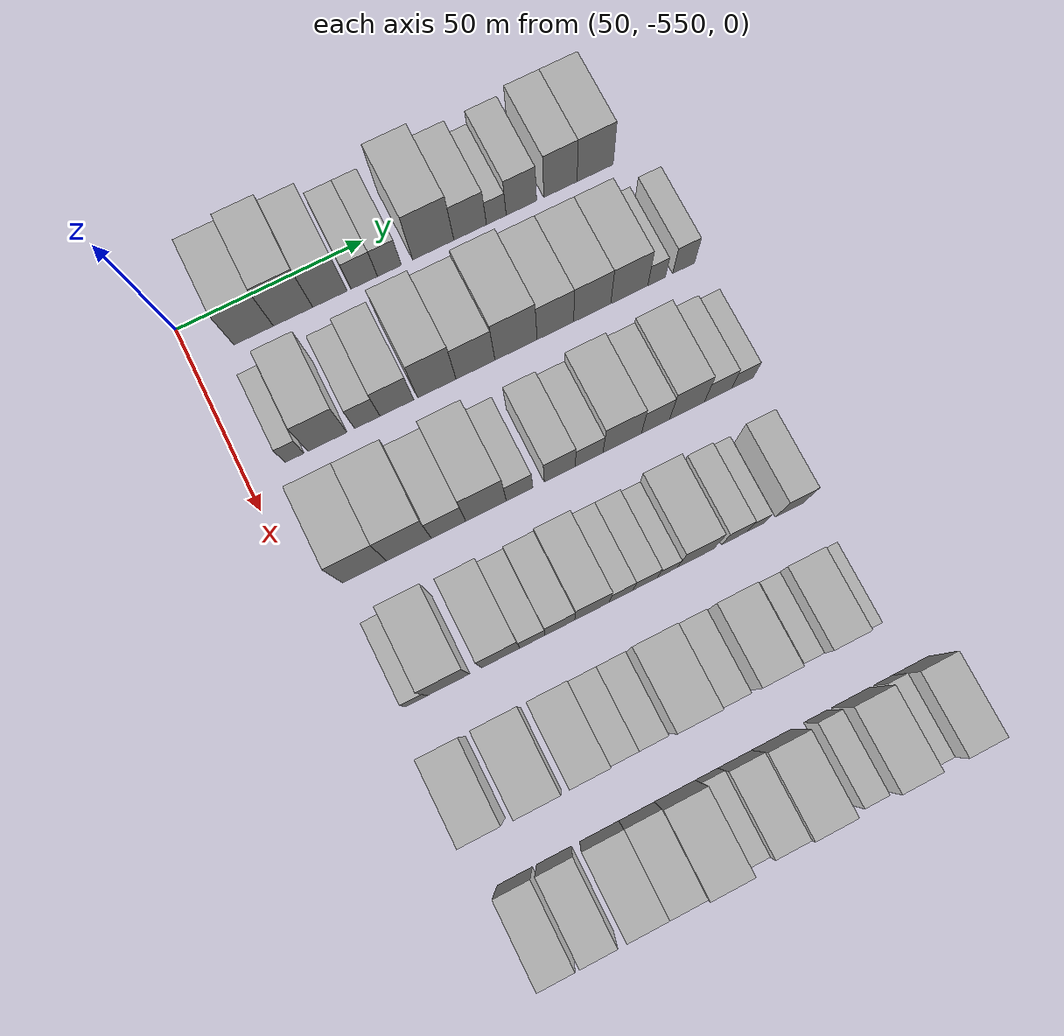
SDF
<sdf version="1.6">
 <world name="default">
  <model name="building_1">
   <static>1</static>
   <pose>50.0000 -533.7909 0 0.000000 0.000000 0.000000</pose>
   <link name="link">
    <pose>0 0 10.50 0 0 0</pose>
    <collision name="collision"><geometry><box><size>20.0000 10.4181 21.0000</size></box></geometry></collision>
    <visual name="visual">
     <cast_shadows>0</cast_shadows>
     <geometry><box><size>20.0000 10.4181 21.0000</size></box></geometry>
     <material>
      <script>
       <uri>model://HANNAS_wall/materials/scripts</uri>
       <uri>model://HANNAS_wall/materials/textures</uri>
       <name>vrc/HANNAS_wall</name>
      </script>
     </material>
    </visual>
   </link>
  </model>
  <model name="building_2">
   <static>1</static>
   <pose>50.0000 -523.3498 0 0.000000 0.000000 0.000000</pose>
   <link name="link">
    <pose>0 0 12.00 0 0 0</pose>
    <collision name="collision"><geometry><box><size>20.0000 10.4640 24.0000</size></box></geometry></collision>
    <visual name="visual">
     <cast_shadows>0</cast_shadows>
     <geometry><box><size>20.0000 10.4640 24.0000</size></box></geometry>
     <material>
      <script>
       <uri>model://HANNAS_wall/materials/scripts</uri>
       <uri>model://HANNAS_wall/materials/textures</uri>
       <name>vrc/HANNAS_wall</name>
      </script>
     </material>
    </visual>
   </link>
  </model>
  <model name="building_3">
   <static>1</static>
   <pose>50.0000 -513.5348 0 0.000000 0.000000 0.000000</pose>
   <link name="link">
    <pose>0 0 10.50 0 0 0</pose>
    <collision name="collision"><geometry><box><size>20.0000 9.1661 21.0000</size></box></geometry></collision>
    <visual name="visual">
     <cast_shadows>0</cast_shadows>
     <geometry><box><size>20.0000 9.1661 21.0000</size></box></geometry>
     <material>
      <script>
       <uri>model://HANNAS_wall/materials/scripts</uri>
       <uri>model://HANNAS_wall/materials/textures</uri>
       <name>vrc/HANNAS_wall</name>
      </script>
     </material>
    </visual>
   </link>
  </model>
  <model name="building_4">
   <static>1</static>
   <pose>50.0000 -504.3818 0 0.000000 0.000000 0.000000</pose>
   <link name="link">
    <pose>0 0 7.50 0 0 0</pose>
    <collision name="collision"><geometry><box><size>20.0000 7.1398 15.0000</size></box></geometry></collision>
    <visual name="visual">
     <cast_shadows>0</cast_shadows>
     <geometry><box><size>20.0000 7.1398 15.0000</size></box></geometry>
     <material>
      <script>
       <uri>model://HANNAS_wall/materials/scripts</uri>
       <uri>model://HANNAS_wall/materials/textures</uri>
       <name>vrc/HANNAS_wall</name>
      </script>
     </material>
    </visual>
   </link>
  </model>
  <model name="building_5">
   <static>1</static>
   <pose>50.0000 -497.5949 0 0.000000 0.000000 0.000000</pose>
   <link name="link">
    <pose>0 0 7.50 0 0 0</pose>
    <collision name="collision"><geometry><box><size>20.0000 6.4341 15.0000</size></box></geometry></collision>
    <visual name="visual">
     <cast_shadows>0</cast_shadows>
     <geometry><box><size>20.0000 6.4341 15.0000</size></box></geometry>
     <material>
      <script>
       <uri>model://HANNAS_wall/materials/scripts</uri>
       <uri>model://HANNAS_wall/materials/textures</uri>
       <name>vrc/HANNAS_wall</name>
      </script>
     </material>
    </visual>
   </link>
  </model>
  <model name="building_6">
   <static>1</static>
   <pose>50.0000 -485.7692 0 0.000000 0.000000 0.000000</pose>
   <link name="link">
    <pose>0 0 12.00 0 0 0</pose>
    <collision name="collision"><geometry><box><size>20.0000 11.2173 24.0000</size></box></geometry></collision>
    <visual name="visual">
     <cast_shadows>0</cast_shadows>
     <geometry><box><size>20.0000 11.2173 24.0000</size></box></geometry>
     <material>
      <script>
       <uri>model://HANNAS_wall/materials/scripts</uri>
       <uri>model://HANNAS_wall/materials/textures</uri>
       <name>vrc/HANNAS_wall</name>
      </script>
     </material>
    </visual>
   </link>
  </model>
  <model name="building_7">
   <static>1</static>
   <pose>50.0000 -475.7095 0 0.000000 0.000000 0.000000</pose>
   <link name="link">
    <pose>0 0 9.00 0 0 0</pose>
    <collision name="collision"><geometry><box><size>20.0000 8.9020 18.0000</size></box></geometry></collision>
    <visual name="visual">
     <cast_shadows>0</cast_shadows>
     <geometry><box><size>20.0000 8.9020 18.0000</size></box></geometry>
     <material>
      <script>
       <uri>model://HANNAS_wall/materials/scripts</uri>
       <uri>model://HANNAS_wall/materials/textures</uri>
       <name>vrc/HANNAS_wall</name>
      </script>
     </material>
    </visual>
   </link>
  </model>
  <model name="building_8">
   <static>1</static>
   <pose>50.0000 -468.5558 0 0.000000 0.000000 0.000000</pose>
   <link name="link">
    <pose>0 0 6.00 0 0 0</pose>
    <collision name="collision"><geometry><box><size>20.0000 5.4055 12.0000</size></box></geometry></collision>
    <visual name="visual">
     <cast_shadows>0</cast_shadows>
     <geometry><box><size>20.0000 5.4055 12.0000</size></box></geometry>
     <material>
      <script>
       <uri>model://HANNAS_wall/materials/scripts</uri>
       <uri>model://HANNAS_wall/materials/textures</uri>
       <name>vrc/HANNAS_wall</name>
      </script>
     </material>
    </visual>
   </link>
  </model>
  <model name="building_9">
   <static>1</static>
   <pose>50.0000 -461.6737 0 0.000000 0.000000 0.000000</pose>
   <link name="link">
    <pose>0 0 9.00 0 0 0</pose>
    <collision name="collision"><geometry><box><size>20.0000 8.3586 18.0000</size></box></geometry></collision>
    <visual name="visual">
     <cast_shadows>0</cast_shadows>
     <geometry><box><size>20.0000 8.3586 18.0000</size></box></geometry>
     <material>
      <script>
       <uri>model://HANNAS_wall/materials/scripts</uri>
       <uri>model://HANNAS_wall/materials/textures</uri>
       <name>vrc/HANNAS_wall</name>
      </script>
     </material>
    </visual>
   </link>
  </model>
  <model name="building_10">
   <static>1</static>
   <pose>50.0000 -450.8882 0 0.000000 0.000000 0.000000</pose>
   <link name="link">
    <pose>0 0 10.50 0 0 0</pose>
    <collision name="collision"><geometry><box><size>20.0000 9.2124 21.0000</size></box></geometry></collision>
    <visual name="visual">
     <cast_shadows>0</cast_shadows>
     <geometry><box><size>20.0000 9.2124 21.0000</size></box></geometry>
     <material>
      <script>
       <uri>model://HANNAS_wall/materials/scripts</uri>
       <uri>model://HANNAS_wall/materials/textures</uri>
       <name>vrc/HANNAS_wall</name>
      </script>
     </material>
    </visual>
   </link>
  </model>
  <model name="building_11">
   <static>1</static>
   <pose>50.0000 -441.2576 0 0.000000 0.000000 0.000000</pose>
   <link name="link">
    <pose>0 0 10.50 0 0 0</pose>
    <collision name="collision"><geometry><box><size>20.0000 10.0488 21.0000</size></box></geometry></collision>
    <visual name="visual">
     <cast_shadows>0</cast_shadows>
     <geometry><box><size>20.0000 10.0488 21.0000</size></box></geometry>
     <material>
      <script>
       <uri>model://HANNAS_wall/materials/scripts</uri>
       <uri>model://HANNAS_wall/materials/textures</uri>
       <name>vrc/HANNAS_wall</name>
      </script>
     </material>
    </visual>
   </link>
  </model>
  <model name="building_122">
   <static>1</static>
   <pose>82.0000 -537.5497 0 0.000000 0.000000 0.000000</pose>
   <link name="link">
    <pose>0 0 6.00 0 0 0</pose>
    <collision name="collision"><geometry><box><size>20.0000 4.9006 12.0000</size></box></geometry></collision>
    <visual name="visual">
     <cast_shadows>0</cast_shadows>
     <geometry><box><size>20.0000 4.9006 12.0000</size></box></geometry>
     <material>
      <script>
       <uri>model://HANNAS_wall/materials/scripts</uri>
       <uri>model://HANNAS_wall/materials/textures</uri>
       <name>vrc/HANNAS_wall</name>
      </script>
     </material>
    </visual>
   </link>
  </model>
  <model name="building_123">
   <static>1</static>
   <pose>82.0000 -529.0203 0 0.000000 0.000000 0.000000</pose>
   <link name="link">
    <pose>0 0 10.50 0 0 0</pose>
    <collision name="collision"><geometry><box><size>20.0000 10.1583 21.0000</size></box></geometry></collision>
    <visual name="visual">
     <cast_shadows>0</cast_shadows>
     <geometry><box><size>20.0000 10.1583 21.0000</size></box></geometry>
     <material>
      <script>
       <uri>model://HANNAS_wall/materials/scripts</uri>
       <uri>model://HANNAS_wall/materials/textures</uri>
       <name>vrc/HANNAS_wall</name>
      </script>
     </material>
    </visual>
   </link>
  </model>
  <model name="building_124">
   <static>1</static>
   <pose>82.0000 -518.6236 0 0.000000 0.000000 0.000000</pose>
   <link name="link">
    <pose>0 0 7.50 0 0 0</pose>
    <collision name="collision"><geometry><box><size>20.0000 6.6351 15.0000</size></box></geometry></collision>
    <visual name="visual">
     <cast_shadows>0</cast_shadows>
     <geometry><box><size>20.0000 6.6351 15.0000</size></box></geometry>
     <material>
      <script>
       <uri>model://HANNAS_wall/materials/scripts</uri>
       <uri>model://HANNAS_wall/materials/textures</uri>
       <name>vrc/HANNAS_wall</name>
      </script>
     </material>
    </visual>
   </link>
  </model>
  <model name="building_125">
   <static>1</static>
   <pose>82.0000 -510.8559 0 0.000000 0.000000 0.000000</pose>
   <link name="link">
    <pose>0 0 9.00 0 0 0</pose>
    <collision name="collision"><geometry><box><size>20.0000 8.9002 18.0000</size></box></geometry></collision>
    <visual name="visual">
     <cast_shadows>0</cast_shadows>
     <geometry><box><size>20.0000 8.9002 18.0000</size></box></geometry>
     <material>
      <script>
       <uri>model://HANNAS_wall/materials/scripts</uri>
       <uri>model://HANNAS_wall/materials/textures</uri>
       <name>vrc/HANNAS_wall</name>
      </script>
     </material>
    </visual>
   </link>
  </model>
  <model name="building_126">
   <static>1</static>
   <pose>82.0000 -500.3152 0 0.000000 0.000000 0.000000</pose>
   <link name="link">
    <pose>0 0 12.00 0 0 0</pose>
    <collision name="collision"><geometry><box><size>20.0000 10.1811 24.0000</size></box></geometry></collision>
    <visual name="visual">
     <cast_shadows>0</cast_shadows>
     <geometry><box><size>20.0000 10.1811 24.0000</size></box></geometry>
     <material>
      <script>
       <uri>model://HANNAS_wall/materials/scripts</uri>
       <uri>model://HANNAS_wall/materials/textures</uri>
       <name>vrc/HANNAS_wall</name>
      </script>
     </material>
    </visual>
   </link>
  </model>
  <model name="building_127">
   <static>1</static>
   <pose>82.0000 -490.0311 0 0.000000 0.000000 0.000000</pose>
   <link name="link">
    <pose>0 0 10.50 0 0 0</pose>
    <collision name="collision"><geometry><box><size>20.0000 10.3872 21.0000</size></box></geometry></collision>
    <visual name="visual">
     <cast_shadows>0</cast_shadows>
     <geometry><box><size>20.0000 10.3872 21.0000</size></box></geometry>
     <material>
      <script>
       <uri>model://HANNAS_wall/materials/scripts</uri>
       <uri>model://HANNAS_wall/materials/textures</uri>
       <name>vrc/HANNAS_wall</name>
      </script>
     </material>
    </visual>
   </link>
  </model>
  <model name="building_128">
   <static>1</static>
   <pose>82.0000 -479.1838 0 0.000000 0.000000 0.000000</pose>
   <link name="link">
    <pose>0 0 12.00 0 0 0</pose>
    <collision name="collision"><geometry><box><size>20.0000 11.3076 24.0000</size></box></geometry></collision>
    <visual name="visual">
     <cast_shadows>0</cast_shadows>
     <geometry><box><size>20.0000 11.3076 24.0000</size></box></geometry>
     <material>
      <script>
       <uri>model://HANNAS_wall/materials/scripts</uri>
       <uri>model://HANNAS_wall/materials/textures</uri>
       <name>vrc/HANNAS_wall</name>
      </script>
     </material>
    </visual>
   </link>
  </model>
  <model name="building_129">
   <static>1</static>
   <pose>82.0000 -468.6011 0 0.000000 0.000000 0.000000</pose>
   <link name="link">
    <pose>0 0 10.50 0 0 0</pose>
    <collision name="collision"><geometry><box><size>20.0000 9.8577 21.0000</size></box></geometry></collision>
    <visual name="visual">
     <cast_shadows>0</cast_shadows>
     <geometry><box><size>20.0000 9.8577 21.0000</size></box></geometry>
     <material>
      <script>
       <uri>model://HANNAS_wall/materials/scripts</uri>
       <uri>model://HANNAS_wall/materials/textures</uri>
       <name>vrc/HANNAS_wall</name>
      </script>
     </material>
    </visual>
   </link>
  </model>
  <model name="building_130">
   <static>1</static>
   <pose>82.0000 -458.6196 0 0.000000 0.000000 0.000000</pose>
   <link name="link">
    <pose>0 0 10.50 0 0 0</pose>
    <collision name="collision"><geometry><box><size>20.0000 10.1055 21.0000</size></box></geometry></collision>
    <visual name="visual">
     <cast_shadows>0</cast_shadows>
     <geometry><box><size>20.0000 10.1055 21.0000</size></box></geometry>
     <material>
      <script>
       <uri>model://HANNAS_wall/materials/scripts</uri>
       <uri>model://HANNAS_wall/materials/textures</uri>
       <name>vrc/HANNAS_wall</name>
      </script>
     </material>
    </visual>
   </link>
  </model>
  <model name="building_131">
   <static>1</static>
   <pose>82.0000 -448.5017 0 0.000000 0.000000 0.000000</pose>
   <link name="link">
    <pose>0 0 10.50 0 0 0</pose>
    <collision name="collision"><geometry><box><size>20.0000 10.1303 21.0000</size></box></geometry></collision>
    <visual name="visual">
     <cast_shadows>0</cast_shadows>
     <geometry><box><size>20.0000 10.1303 21.0000</size></box></geometry>
     <material>
      <script>
       <uri>model://HANNAS_wall/materials/scripts</uri>
       <uri>model://HANNAS_wall/materials/textures</uri>
       <name>vrc/HANNAS_wall</name>
      </script>
     </material>
    </visual>
   </link>
  </model>
  <model name="building_132">
   <static>1</static>
   <pose>82.0000 -441.0138 0 0.000000 0.000000 0.000000</pose>
   <link name="link">
    <pose>0 0 6.00 0 0 0</pose>
    <collision name="collision"><geometry><box><size>20.0000 4.8454 12.0000</size></box></geometry></collision>
    <visual name="visual">
     <cast_shadows>0</cast_shadows>
     <geometry><box><size>20.0000 4.8454 12.0000</size></box></geometry>
     <material>
      <script>
       <uri>model://HANNAS_wall/materials/scripts</uri>
       <uri>model://HANNAS_wall/materials/textures</uri>
       <name>vrc/HANNAS_wall</name>
      </script>
     </material>
    </visual>
   </link>
  </model>
  <model name="building_133">
   <static>1</static>
   <pose>82.0000 -433.5760 0 0.000000 0.000000 0.000000</pose>
   <link name="link">
    <pose>0 0 7.50 0 0 0</pose>
    <collision name="collision"><geometry><box><size>20.0000 6.0302 15.0000</size></box></geometry></collision>
    <visual name="visual">
     <cast_shadows>0</cast_shadows>
     <geometry><box><size>20.0000 6.0302 15.0000</size></box></geometry>
     <material>
      <script>
       <uri>model://HANNAS_wall/materials/scripts</uri>
       <uri>model://HANNAS_wall/materials/textures</uri>
       <name>vrc/HANNAS_wall</name>
      </script>
     </material>
    </visual>
   </link>
  </model>
  <model name="building_243">
   <static>1</static>
   <pose>114.0000 -534.3735 0 0.000000 0.000000 0.000000</pose>
   <link name="link">
    <pose>0 0 12.00 0 0 0</pose>
    <collision name="collision"><geometry><box><size>20.0000 11.2531 24.0000</size></box></geometry></collision>
    <visual name="visual">
     <cast_shadows>0</cast_shadows>
     <geometry><box><size>20.0000 11.2531 24.0000</size></box></geometry>
     <material>
      <script>
       <uri>model://HANNAS_wall/materials/scripts</uri>
       <uri>model://HANNAS_wall/materials/textures</uri>
       <name>vrc/HANNAS_wall</name>
      </script>
     </material>
    </visual>
   </link>
  </model>
  <model name="building_244">
   <static>1</static>
   <pose>114.0000 -522.9840 0 0.000000 0.000000 0.000000</pose>
   <link name="link">
    <pose>0 0 12.00 0 0 0</pose>
    <collision name="collision"><geometry><box><size>20.0000 11.5258 24.0000</size></box></geometry></collision>
    <visual name="visual">
     <cast_shadows>0</cast_shadows>
     <geometry><box><size>20.0000 11.5258 24.0000</size></box></geometry>
     <material>
      <script>
       <uri>model://HANNAS_wall/materials/scripts</uri>
       <uri>model://HANNAS_wall/materials/textures</uri>
       <name>vrc/HANNAS_wall</name>
      </script>
     </material>
    </visual>
   </link>
  </model>
  <model name="building_245">
   <static>1</static>
   <pose>114.0000 -512.7884 0 0.000000 0.000000 0.000000</pose>
   <link name="link">
    <pose>0 0 9.00 0 0 0</pose>
    <collision name="collision"><geometry><box><size>20.0000 8.8653 18.0000</size></box></geometry></collision>
    <visual name="visual">
     <cast_shadows>0</cast_shadows>
     <geometry><box><size>20.0000 8.8653 18.0000</size></box></geometry>
     <material>
      <script>
       <uri>model://HANNAS_wall/materials/scripts</uri>
       <uri>model://HANNAS_wall/materials/textures</uri>
       <name>vrc/HANNAS_wall</name>
      </script>
     </material>
    </visual>
   </link>
  </model>
  <model name="building_246">
   <static>1</static>
   <pose>114.0000 -503.0552 0 0.000000 0.000000 0.000000</pose>
   <link name="link">
    <pose>0 0 12.00 0 0 0</pose>
    <collision name="collision"><geometry><box><size>20.0000 10.6011 24.0000</size></box></geometry></collision>
    <visual name="visual">
     <cast_shadows>0</cast_shadows>
     <geometry><box><size>20.0000 10.6011 24.0000</size></box></geometry>
     <material>
      <script>
       <uri>model://HANNAS_wall/materials/scripts</uri>
       <uri>model://HANNAS_wall/materials/textures</uri>
       <name>vrc/HANNAS_wall</name>
      </script>
     </material>
    </visual>
   </link>
  </model>
  <model name="building_247">
   <static>1</static>
   <pose>114.0000 -494.2888 0 0.000000 0.000000 0.000000</pose>
   <link name="link">
    <pose>0 0 7.50 0 0 0</pose>
    <collision name="collision"><geometry><box><size>20.0000 6.9318 15.0000</size></box></geometry></collision>
    <visual name="visual">
     <cast_shadows>0</cast_shadows>
     <geometry><box><size>20.0000 6.9318 15.0000</size></box></geometry>
     <material>
      <script>
       <uri>model://HANNAS_wall/materials/scripts</uri>
       <uri>model://HANNAS_wall/materials/textures</uri>
       <name>vrc/HANNAS_wall</name>
      </script>
     </material>
    </visual>
   </link>
  </model>
  <model name="building_248">
   <static>1</static>
   <pose>114.0000 -483.7545 0 0.000000 0.000000 0.000000</pose>
   <link name="link">
    <pose>0 0 9.00 0 0 0</pose>
    <collision name="collision"><geometry><box><size>20.0000 8.1367 18.0000</size></box></geometry></collision>
    <visual name="visual">
     <cast_shadows>0</cast_shadows>
     <geometry><box><size>20.0000 8.1367 18.0000</size></box></geometry>
     <material>
      <script>
       <uri>model://HANNAS_wall/materials/scripts</uri>
       <uri>model://HANNAS_wall/materials/textures</uri>
       <name>vrc/HANNAS_wall</name>
      </script>
     </material>
    </visual>
   </link>
  </model>
  <model name="building_249">
   <static>1</static>
   <pose>114.0000 -476.0114 0 0.000000 0.000000 0.000000</pose>
   <link name="link">
    <pose>0 0 7.50 0 0 0</pose>
    <collision name="collision"><geometry><box><size>20.0000 7.3494 15.0000</size></box></geometry></collision>
    <visual name="visual">
     <cast_shadows>0</cast_shadows>
     <geometry><box><size>20.0000 7.3494 15.0000</size></box></geometry>
     <material>
      <script>
       <uri>model://HANNAS_wall/materials/scripts</uri>
       <uri>model://HANNAS_wall/materials/textures</uri>
       <name>vrc/HANNAS_wall</name>
      </script>
     </material>
    </visual>
   </link>
  </model>
  <model name="building_250">
   <static>1</static>
   <pose>114.0000 -467.2155 0 0.000000 0.000000 0.000000</pose>
   <link name="link">
    <pose>0 0 10.50 0 0 0</pose>
    <collision name="collision"><geometry><box><size>20.0000 10.2425 21.0000</size></box></geometry></collision>
    <visual name="visual">
     <cast_shadows>0</cast_shadows>
     <geometry><box><size>20.0000 10.2425 21.0000</size></box></geometry>
     <material>
      <script>
       <uri>model://HANNAS_wall/materials/scripts</uri>
       <uri>model://HANNAS_wall/materials/textures</uri>
       <name>vrc/HANNAS_wall</name>
      </script>
     </material>
    </visual>
   </link>
  </model>
  <model name="building_251">
   <static>1</static>
   <pose>114.0000 -458.3304 0 0.000000 0.000000 0.000000</pose>
   <link name="link">
    <pose>0 0 9.00 0 0 0</pose>
    <collision name="collision"><geometry><box><size>20.0000 7.5276 18.0000</size></box></geometry></collision>
    <visual name="visual">
     <cast_shadows>0</cast_shadows>
     <geometry><box><size>20.0000 7.5276 18.0000</size></box></geometry>
     <material>
      <script>
       <uri>model://HANNAS_wall/materials/scripts</uri>
       <uri>model://HANNAS_wall/materials/textures</uri>
       <name>vrc/HANNAS_wall</name>
      </script>
     </material>
    </visual>
   </link>
  </model>
  <model name="building_252">
   <static>1</static>
   <pose>114.0000 -449.8734 0 0.000000 0.000000 0.000000</pose>
   <link name="link">
    <pose>0 0 10.50 0 0 0</pose>
    <collision name="collision"><geometry><box><size>20.0000 9.3864 21.0000</size></box></geometry></collision>
    <visual name="visual">
     <cast_shadows>0</cast_shadows>
     <geometry><box><size>20.0000 9.3864 21.0000</size></box></geometry>
     <material>
      <script>
       <uri>model://HANNAS_wall/materials/scripts</uri>
       <uri>model://HANNAS_wall/materials/textures</uri>
       <name>vrc/HANNAS_wall</name>
      </script>
     </material>
    </visual>
   </link>
  </model>
  <model name="building_253">
   <static>1</static>
   <pose>114.0000 -441.4984 0 0.000000 0.000000 0.000000</pose>
   <link name="link">
    <pose>0 0 7.50 0 0 0</pose>
    <collision name="collision"><geometry><box><size>20.0000 7.3636 15.0000</size></box></geometry></collision>
    <visual name="visual">
     <cast_shadows>0</cast_shadows>
     <geometry><box><size>20.0000 7.3636 15.0000</size></box></geometry>
     <material>
      <script>
       <uri>model://HANNAS_wall/materials/scripts</uri>
       <uri>model://HANNAS_wall/materials/textures</uri>
       <name>vrc/HANNAS_wall</name>
      </script>
     </material>
    </visual>
   </link>
  </model>
  <model name="building_254">
   <static>1</static>
   <pose>114.0000 -434.8476 0 0.000000 0.000000 0.000000</pose>
   <link name="link">
    <pose>0 0 6.00 0 0 0</pose>
    <collision name="collision"><geometry><box><size>20.0000 5.9379 12.0000</size></box></geometry></collision>
    <visual name="visual">
     <cast_shadows>0</cast_shadows>
     <geometry><box><size>20.0000 5.9379 12.0000</size></box></geometry>
     <material>
      <script>
       <uri>model://HANNAS_wall/materials/scripts</uri>
       <uri>model://HANNAS_wall/materials/textures</uri>
       <name>vrc/HANNAS_wall</name>
      </script>
     </material>
    </visual>
   </link>
  </model>
  <model name="building_363">
   <static>1</static>
   <pose>146.0000 -536.3326 0 0.000000 0.000000 0.000000</pose>
   <link name="link">
    <pose>0 0 6.00 0 0 0</pose>
    <collision name="collision"><geometry><box><size>20.0000 5.3349 12.0000</size></box></geometry></collision>
    <visual name="visual">
     <cast_shadows>0</cast_shadows>
     <geometry><box><size>20.0000 5.3349 12.0000</size></box></geometry>
     <material>
      <script>
       <uri>model://HANNAS_wall/materials/scripts</uri>
       <uri>model://HANNAS_wall/materials/textures</uri>
       <name>vrc/HANNAS_wall</name>
      </script>
     </material>
    </visual>
   </link>
  </model>
  <model name="building_364">
   <static>1</static>
   <pose>146.0000 -528.3391 0 0.000000 0.000000 0.000000</pose>
   <link name="link">
    <pose>0 0 12.00 0 0 0</pose>
    <collision name="collision"><geometry><box><size>20.0000 10.6520 24.0000</size></box></geometry></collision>
    <visual name="visual">
     <cast_shadows>0</cast_shadows>
     <geometry><box><size>20.0000 10.6520 24.0000</size></box></geometry>
     <material>
      <script>
       <uri>model://HANNAS_wall/materials/scripts</uri>
       <uri>model://HANNAS_wall/materials/textures</uri>
       <name>vrc/HANNAS_wall</name>
      </script>
     </material>
    </visual>
   </link>
  </model>
  <model name="building_365">
   <static>1</static>
   <pose>146.0000 -515.1552 0 0.000000 0.000000 0.000000</pose>
   <link name="link">
    <pose>0 0 10.50 0 0 0</pose>
    <collision name="collision"><geometry><box><size>20.0000 9.7157 21.0000</size></box></geometry></collision>
    <visual name="visual">
     <cast_shadows>0</cast_shadows>
     <geometry><box><size>20.0000 9.7157 21.0000</size></box></geometry>
     <material>
      <script>
       <uri>model://HANNAS_wall/materials/scripts</uri>
       <uri>model://HANNAS_wall/materials/textures</uri>
       <name>vrc/HANNAS_wall</name>
      </script>
     </material>
    </visual>
   </link>
  </model>
  <model name="building_366">
   <static>1</static>
   <pose>146.0000 -507.0775 0 0.000000 0.000000 0.000000</pose>
   <link name="link">
    <pose>0 0 7.50 0 0 0</pose>
    <collision name="collision"><geometry><box><size>20.0000 6.4398 15.0000</size></box></geometry></collision>
    <visual name="visual">
     <cast_shadows>0</cast_shadows>
     <geometry><box><size>20.0000 6.4398 15.0000</size></box></geometry>
     <material>
      <script>
       <uri>model://HANNAS_wall/materials/scripts</uri>
       <uri>model://HANNAS_wall/materials/textures</uri>
       <name>vrc/HANNAS_wall</name>
      </script>
     </material>
    </visual>
   </link>
  </model>
  <model name="building_367">
   <static>1</static>
   <pose>146.0000 -500.0684 0 0.000000 0.000000 0.000000</pose>
   <link name="link">
    <pose>0 0 9.00 0 0 0</pose>
    <collision name="collision"><geometry><box><size>20.0000 7.5782 18.0000</size></box></geometry></collision>
    <visual name="visual">
     <cast_shadows>0</cast_shadows>
     <geometry><box><size>20.0000 7.5782 18.0000</size></box></geometry>
     <material>
      <script>
       <uri>model://HANNAS_wall/materials/scripts</uri>
       <uri>model://HANNAS_wall/materials/textures</uri>
       <name>vrc/HANNAS_wall</name>
      </script>
     </material>
    </visual>
   </link>
  </model>
  <model name="building_368">
   <static>1</static>
   <pose>146.0000 -491.8068 0 0.000000 0.000000 0.000000</pose>
   <link name="link">
    <pose>0 0 10.50 0 0 0</pose>
    <collision name="collision"><geometry><box><size>20.0000 8.9451 21.0000</size></box></geometry></collision>
    <visual name="visual">
     <cast_shadows>0</cast_shadows>
     <geometry><box><size>20.0000 8.9451 21.0000</size></box></geometry>
     <material>
      <script>
       <uri>model://HANNAS_wall/materials/scripts</uri>
       <uri>model://HANNAS_wall/materials/textures</uri>
       <name>vrc/HANNAS_wall</name>
      </script>
     </material>
    </visual>
   </link>
  </model>
  <model name="building_369">
   <static>1</static>
   <pose>146.0000 -484.2563 0 0.000000 0.000000 0.000000</pose>
   <link name="link">
    <pose>0 0 7.50 0 0 0</pose>
    <collision name="collision"><geometry><box><size>20.0000 6.1559 15.0000</size></box></geometry></collision>
    <visual name="visual">
     <cast_shadows>0</cast_shadows>
     <geometry><box><size>20.0000 6.1559 15.0000</size></box></geometry>
     <material>
      <script>
       <uri>model://HANNAS_wall/materials/scripts</uri>
       <uri>model://HANNAS_wall/materials/textures</uri>
       <name>vrc/HANNAS_wall</name>
      </script>
     </material>
    </visual>
   </link>
  </model>
  <model name="building_370">
   <static>1</static>
   <pose>146.0000 -477.9948 0 0.000000 0.000000 0.000000</pose>
   <link name="link">
    <pose>0 0 7.50 0 0 0</pose>
    <collision name="collision"><geometry><box><size>20.0000 6.3670 15.0000</size></box></geometry></collision>
    <visual name="visual">
     <cast_shadows>0</cast_shadows>
     <geometry><box><size>20.0000 6.3670 15.0000</size></box></geometry>
     <material>
      <script>
       <uri>model://HANNAS_wall/materials/scripts</uri>
       <uri>model://HANNAS_wall/materials/textures</uri>
       <name>vrc/HANNAS_wall</name>
      </script>
     </material>
    </visual>
   </link>
  </model>
  <model name="building_371">
   <static>1</static>
   <pose>146.0000 -472.1986 0 0.000000 0.000000 0.000000</pose>
   <link name="link">
    <pose>0 0 6.00 0 0 0</pose>
    <collision name="collision"><geometry><box><size>20.0000 5.2255 12.0000</size></box></geometry></collision>
    <visual name="visual">
     <cast_shadows>0</cast_shadows>
     <geometry><box><size>20.0000 5.2255 12.0000</size></box></geometry>
     <material>
      <script>
       <uri>model://HANNAS_wall/materials/scripts</uri>
       <uri>model://HANNAS_wall/materials/textures</uri>
       <name>vrc/HANNAS_wall</name>
      </script>
     </material>
    </visual>
   </link>
  </model>
  <model name="building_372">
   <static>1</static>
   <pose>146.0000 -464.7498 0 0.000000 0.000000 0.000000</pose>
   <link name="link">
    <pose>0 0 10.50 0 0 0</pose>
    <collision name="collision"><geometry><box><size>20.0000 9.6721 21.0000</size></box></geometry></collision>
    <visual name="visual">
     <cast_shadows>0</cast_shadows>
     <geometry><box><size>20.0000 9.6721 21.0000</size></box></geometry>
     <material>
      <script>
       <uri>model://HANNAS_wall/materials/scripts</uri>
       <uri>model://HANNAS_wall/materials/textures</uri>
       <name>vrc/HANNAS_wall</name>
      </script>
     </material>
    </visual>
   </link>
  </model>
  <model name="building_373">
   <static>1</static>
   <pose>146.0000 -454.6483 0 0.000000 0.000000 0.000000</pose>
   <link name="link">
    <pose>0 0 7.50 0 0 0</pose>
    <collision name="collision"><geometry><box><size>20.0000 6.5310 15.0000</size></box></geometry></collision>
    <visual name="visual">
     <cast_shadows>0</cast_shadows>
     <geometry><box><size>20.0000 6.5310 15.0000</size></box></geometry>
     <material>
      <script>
       <uri>model://HANNAS_wall/materials/scripts</uri>
       <uri>model://HANNAS_wall/materials/textures</uri>
       <name>vrc/HANNAS_wall</name>
      </script>
     </material>
    </visual>
   </link>
  </model>
  <model name="building_374">
   <static>1</static>
   <pose>146.0000 -448.9781 0 0.000000 0.000000 0.000000</pose>
   <link name="link">
    <pose>0 0 6.00 0 0 0</pose>
    <collision name="collision"><geometry><box><size>20.0000 4.8094 12.0000</size></box></geometry></collision>
    <visual name="visual">
     <cast_shadows>0</cast_shadows>
     <geometry><box><size>20.0000 4.8094 12.0000</size></box></geometry>
     <material>
      <script>
       <uri>model://HANNAS_wall/materials/scripts</uri>
       <uri>model://HANNAS_wall/materials/textures</uri>
       <name>vrc/HANNAS_wall</name>
      </script>
     </material>
    </visual>
   </link>
  </model>
  <model name="building_375">
   <static>1</static>
   <pose>146.0000 -439.8325 0 0.000000 0.000000 0.000000</pose>
   <link name="link">
    <pose>0 0 9.00 0 0 0</pose>
    <collision name="collision"><geometry><box><size>20.0000 7.4818 18.0000</size></box></geometry></collision>
    <visual name="visual">
     <cast_shadows>0</cast_shadows>
     <geometry><box><size>20.0000 7.4818 18.0000</size></box></geometry>
     <material>
      <script>
       <uri>model://HANNAS_wall/materials/scripts</uri>
       <uri>model://HANNAS_wall/materials/textures</uri>
       <name>vrc/HANNAS_wall</name>
      </script>
     </material>
    </visual>
   </link>
  </model>
  <model name="building_481">
   <static>1</static>
   <pose>178.0000 -535.0166 0 0.000000 0.000000 0.000000</pose>
   <link name="link">
    <pose>0 0 10.50 0 0 0</pose>
    <collision name="collision"><geometry><box><size>20.0000 9.9668 21.0000</size></box></geometry></collision>
    <visual name="visual">
     <cast_shadows>0</cast_shadows>
     <geometry><box><size>20.0000 9.9668 21.0000</size></box></geometry>
     <material>
      <script>
       <uri>model://HANNAS_wall/materials/scripts</uri>
       <uri>model://HANNAS_wall/materials/textures</uri>
       <name>vrc/HANNAS_wall</name>
      </script>
     </material>
    </visual>
   </link>
  </model>
  <model name="building_482">
   <static>1</static>
   <pose>178.0000 -521.6029 0 0.000000 0.000000 0.000000</pose>
   <link name="link">
    <pose>0 0 12.00 0 0 0</pose>
    <collision name="collision"><geometry><box><size>20.0000 10.8607 24.0000</size></box></geometry></collision>
    <visual name="visual">
     <cast_shadows>0</cast_shadows>
     <geometry><box><size>20.0000 10.8607 24.0000</size></box></geometry>
     <material>
      <script>
       <uri>model://HANNAS_wall/materials/scripts</uri>
       <uri>model://HANNAS_wall/materials/textures</uri>
       <name>vrc/HANNAS_wall</name>
      </script>
     </material>
    </visual>
   </link>
  </model>
  <model name="building_483">
   <static>1</static>
   <pose>178.0000 -509.3229 0 0.000000 0.000000 0.000000</pose>
   <link name="link">
    <pose>0 0 10.50 0 0 0</pose>
    <collision name="collision"><geometry><box><size>20.0000 9.6992 21.0000</size></box></geometry></collision>
    <visual name="visual">
     <cast_shadows>0</cast_shadows>
     <geometry><box><size>20.0000 9.6992 21.0000</size></box></geometry>
     <material>
      <script>
       <uri>model://HANNAS_wall/materials/scripts</uri>
       <uri>model://HANNAS_wall/materials/textures</uri>
       <name>vrc/HANNAS_wall</name>
      </script>
     </material>
    </visual>
   </link>
  </model>
  <model name="building_484">
   <static>1</static>
   <pose>178.0000 -500.9593 0 0.000000 0.000000 0.000000</pose>
   <link name="link">
    <pose>0 0 7.50 0 0 0</pose>
    <collision name="collision"><geometry><box><size>20.0000 7.0280 15.0000</size></box></geometry></collision>
    <visual name="visual">
     <cast_shadows>0</cast_shadows>
     <geometry><box><size>20.0000 7.0280 15.0000</size></box></geometry>
     <material>
      <script>
       <uri>model://HANNAS_wall/materials/scripts</uri>
       <uri>model://HANNAS_wall/materials/textures</uri>
       <name>vrc/HANNAS_wall</name>
      </script>
     </material>
    </visual>
   </link>
  </model>
  <model name="building_485">
   <static>1</static>
   <pose>178.0000 -493.8767 0 0.000000 0.000000 0.000000</pose>
   <link name="link">
    <pose>0 0 7.50 0 0 0</pose>
    <collision name="collision"><geometry><box><size>20.0000 7.1371 15.0000</size></box></geometry></collision>
    <visual name="visual">
     <cast_shadows>0</cast_shadows>
     <geometry><box><size>20.0000 7.1371 15.0000</size></box></geometry>
     <material>
      <script>
       <uri>model://HANNAS_wall/materials/scripts</uri>
       <uri>model://HANNAS_wall/materials/textures</uri>
       <name>vrc/HANNAS_wall</name>
      </script>
     </material>
    </visual>
   </link>
  </model>
  <model name="building_486">
   <static>1</static>
   <pose>178.0000 -483.8377 0 0.000000 0.000000 0.000000</pose>
   <link name="link">
    <pose>0 0 12.00 0 0 0</pose>
    <collision name="collision"><geometry><box><size>20.0000 10.9410 24.0000</size></box></geometry></collision>
    <visual name="visual">
     <cast_shadows>0</cast_shadows>
     <geometry><box><size>20.0000 10.9410 24.0000</size></box></geometry>
     <material>
      <script>
       <uri>model://HANNAS_wall/materials/scripts</uri>
       <uri>model://HANNAS_wall/materials/textures</uri>
       <name>vrc/HANNAS_wall</name>
      </script>
     </material>
    </visual>
   </link>
  </model>
  <model name="building_487">
   <static>1</static>
   <pose>178.0000 -474.5673 0 0.000000 0.000000 0.000000</pose>
   <link name="link">
    <pose>0 0 9.00 0 0 0</pose>
    <collision name="collision"><geometry><box><size>20.0000 7.5999 18.0000</size></box></geometry></collision>
    <visual name="visual">
     <cast_shadows>0</cast_shadows>
     <geometry><box><size>20.0000 7.5999 18.0000</size></box></geometry>
     <material>
      <script>
       <uri>model://HANNAS_wall/materials/scripts</uri>
       <uri>model://HANNAS_wall/materials/textures</uri>
       <name>vrc/HANNAS_wall</name>
      </script>
     </material>
    </visual>
   </link>
  </model>
  <model name="building_488">
   <static>1</static>
   <pose>178.0000 -463.7355 0 0.000000 0.000000 0.000000</pose>
   <link name="link">
    <pose>0 0 10.50 0 0 0</pose>
    <collision name="collision"><geometry><box><size>20.0000 10.0636 21.0000</size></box></geometry></collision>
    <visual name="visual">
     <cast_shadows>0</cast_shadows>
     <geometry><box><size>20.0000 10.0636 21.0000</size></box></geometry>
     <material>
      <script>
       <uri>model://HANNAS_wall/materials/scripts</uri>
       <uri>model://HANNAS_wall/materials/textures</uri>
       <name>vrc/HANNAS_wall</name>
      </script>
     </material>
    </visual>
   </link>
  </model>
  <model name="building_489">
   <static>1</static>
   <pose>178.0000 -454.1387 0 0.000000 0.000000 0.000000</pose>
   <link name="link">
    <pose>0 0 6.00 0 0 0</pose>
    <collision name="collision"><geometry><box><size>20.0000 5.1300 12.0000</size></box></geometry></collision>
    <visual name="visual">
     <cast_shadows>0</cast_shadows>
     <geometry><box><size>20.0000 5.1300 12.0000</size></box></geometry>
     <material>
      <script>
       <uri>model://HANNAS_wall/materials/scripts</uri>
       <uri>model://HANNAS_wall/materials/textures</uri>
       <name>vrc/HANNAS_wall</name>
      </script>
     </material>
    </visual>
   </link>
  </model>
  <model name="building_490">
   <static>1</static>
   <pose>178.0000 -446.8665 0 0.000000 0.000000 0.000000</pose>
   <link name="link">
    <pose>0 0 10.50 0 0 0</pose>
    <collision name="collision"><geometry><box><size>20.0000 9.4144 21.0000</size></box></geometry></collision>
    <visual name="visual">
     <cast_shadows>0</cast_shadows>
     <geometry><box><size>20.0000 9.4144 21.0000</size></box></geometry>
     <material>
      <script>
       <uri>model://HANNAS_wall/materials/scripts</uri>
       <uri>model://HANNAS_wall/materials/textures</uri>
       <name>vrc/HANNAS_wall</name>
      </script>
     </material>
    </visual>
   </link>
  </model>
  <model name="building_491">
   <static>1</static>
   <pose>178.0000 -439.5706 0 0.000000 0.000000 0.000000</pose>
   <link name="link">
    <pose>0 0 6.00 0 0 0</pose>
    <collision name="collision"><geometry><box><size>20.0000 5.1775 12.0000</size></box></geometry></collision>
    <visual name="visual">
     <cast_shadows>0</cast_shadows>
     <geometry><box><size>20.0000 5.1775 12.0000</size></box></geometry>
     <material>
      <script>
       <uri>model://HANNAS_wall/materials/scripts</uri>
       <uri>model://HANNAS_wall/materials/textures</uri>
       <name>vrc/HANNAS_wall</name>
      </script>
     </material>
    </visual>
   </link>
  </model>
  <model name="building_602">
   <static>1</static>
   <pose>210.0000 -533.6654 0 0.000000 0.000000 0.000000</pose>
   <link name="link">
    <pose>0 0 10.50 0 0 0</pose>
    <collision name="collision"><geometry><box><size>20.0000 8.6691 21.0000</size></box></geometry></collision>
    <visual name="visual">
     <cast_shadows>0</cast_shadows>
     <geometry><box><size>20.0000 8.6691 21.0000</size></box></geometry>
     <material>
      <script>
       <uri>model://HANNAS_wall/materials/scripts</uri>
       <uri>model://HANNAS_wall/materials/textures</uri>
       <name>vrc/HANNAS_wall</name>
      </script>
     </material>
    </visual>
   </link>
  </model>
  <model name="building_603">
   <static>1</static>
   <pose>210.0000 -523.9872 0 0.000000 0.000000 0.000000</pose>
   <link name="link">
    <pose>0 0 10.50 0 0 0</pose>
    <collision name="collision"><geometry><box><size>20.0000 8.6873 21.0000</size></box></geometry></collision>
    <visual name="visual">
     <cast_shadows>0</cast_shadows>
     <geometry><box><size>20.0000 8.6873 21.0000</size></box></geometry>
     <material>
      <script>
       <uri>model://HANNAS_wall/materials/scripts</uri>
       <uri>model://HANNAS_wall/materials/textures</uri>
       <name>vrc/HANNAS_wall</name>
      </script>
     </material>
    </visual>
   </link>
  </model>
  <model name="building_604">
   <static>1</static>
   <pose>210.0000 -512.7344 0 0.000000 0.000000 0.000000</pose>
   <link name="link">
    <pose>0 0 10.50 0 0 0</pose>
    <collision name="collision"><geometry><box><size>20.0000 9.8183 21.0000</size></box></geometry></collision>
    <visual name="visual">
     <cast_shadows>0</cast_shadows>
     <geometry><box><size>20.0000 9.8183 21.0000</size></box></geometry>
     <material>
      <script>
       <uri>model://HANNAS_wall/materials/scripts</uri>
       <uri>model://HANNAS_wall/materials/textures</uri>
       <name>vrc/HANNAS_wall</name>
      </script>
     </material>
    </visual>
   </link>
  </model>
  <model name="building_605">
   <static>1</static>
   <pose>210.0000 -503.3935 0 0.000000 0.000000 0.000000</pose>
   <link name="link">
    <pose>0 0 10.50 0 0 0</pose>
    <collision name="collision"><geometry><box><size>20.0000 8.8635 21.0000</size></box></geometry></collision>
    <visual name="visual">
     <cast_shadows>0</cast_shadows>
     <geometry><box><size>20.0000 8.8635 21.0000</size></box></geometry>
     <material>
      <script>
       <uri>model://HANNAS_wall/materials/scripts</uri>
       <uri>model://HANNAS_wall/materials/textures</uri>
       <name>vrc/HANNAS_wall</name>
      </script>
     </material>
    </visual>
   </link>
  </model>
  <model name="building_606">
   <static>1</static>
   <pose>210.0000 -493.7539 0 0.000000 0.000000 0.000000</pose>
   <link name="link">
    <pose>0 0 12.00 0 0 0</pose>
    <collision name="collision"><geometry><box><size>20.0000 10.4157 24.0000</size></box></geometry></collision>
    <visual name="visual">
     <cast_shadows>0</cast_shadows>
     <geometry><box><size>20.0000 10.4157 24.0000</size></box></geometry>
     <material>
      <script>
       <uri>model://HANNAS_wall/materials/scripts</uri>
       <uri>model://HANNAS_wall/materials/textures</uri>
       <name>vrc/HANNAS_wall</name>
      </script>
     </material>
    </visual>
   </link>
  </model>
  <model name="building_607">
   <static>1</static>
   <pose>210.0000 -485.6932 0 0.000000 0.000000 0.000000</pose>
   <link name="link">
    <pose>0 0 6.00 0 0 0</pose>
    <collision name="collision"><geometry><box><size>20.0000 5.7057 12.0000</size></box></geometry></collision>
    <visual name="visual">
     <cast_shadows>0</cast_shadows>
     <geometry><box><size>20.0000 5.7057 12.0000</size></box></geometry>
     <material>
      <script>
       <uri>model://HANNAS_wall/materials/scripts</uri>
       <uri>model://HANNAS_wall/materials/textures</uri>
       <name>vrc/HANNAS_wall</name>
      </script>
     </material>
    </visual>
   </link>
  </model>
  <model name="building_608">
   <static>1</static>
   <pose>210.0000 -478.5113 0 0.000000 0.000000 0.000000</pose>
   <link name="link">
    <pose>0 0 9.00 0 0 0</pose>
    <collision name="collision"><geometry><box><size>20.0000 8.6582 18.0000</size></box></geometry></collision>
    <visual name="visual">
     <cast_shadows>0</cast_shadows>
     <geometry><box><size>20.0000 8.6582 18.0000</size></box></geometry>
     <material>
      <script>
       <uri>model://HANNAS_wall/materials/scripts</uri>
       <uri>model://HANNAS_wall/materials/textures</uri>
       <name>vrc/HANNAS_wall</name>
      </script>
     </material>
    </visual>
   </link>
  </model>
  <model name="building_609">
   <static>1</static>
   <pose>210.0000 -468.9877 0 0.000000 0.000000 0.000000</pose>
   <link name="link">
    <pose>0 0 10.50 0 0 0</pose>
    <collision name="collision"><geometry><box><size>20.0000 10.3889 21.0000</size></box></geometry></collision>
    <visual name="visual">
     <cast_shadows>0</cast_shadows>
     <geometry><box><size>20.0000 10.3889 21.0000</size></box></geometry>
     <material>
      <script>
       <uri>model://HANNAS_wall/materials/scripts</uri>
       <uri>model://HANNAS_wall/materials/textures</uri>
       <name>vrc/HANNAS_wall</name>
      </script>
     </material>
    </visual>
   </link>
  </model>
  <model name="building_610">
   <static>1</static>
   <pose>210.0000 -457.7123 0 0.000000 0.000000 0.000000</pose>
   <link name="link">
    <pose>0 0 7.50 0 0 0</pose>
    <collision name="collision"><geometry><box><size>20.0000 6.1620 15.0000</size></box></geometry></collision>
    <visual name="visual">
     <cast_shadows>0</cast_shadows>
     <geometry><box><size>20.0000 6.1620 15.0000</size></box></geometry>
     <material>
      <script>
       <uri>model://HANNAS_wall/materials/scripts</uri>
       <uri>model://HANNAS_wall/materials/textures</uri>
       <name>vrc/HANNAS_wall</name>
      </script>
     </material>
    </visual>
   </link>
  </model>
  <model name="building_611">
   <static>1</static>
   <pose>210.0000 -448.6288 0 0.000000 0.000000 0.000000</pose>
   <link name="link">
    <pose>0 0 10.50 0 0 0</pose>
    <collision name="collision"><geometry><box><size>20.0000 10.0050 21.0000</size></box></geometry></collision>
    <visual name="visual">
     <cast_shadows>0</cast_shadows>
     <geometry><box><size>20.0000 10.0050 21.0000</size></box></geometry>
     <material>
      <script>
       <uri>model://HANNAS_wall/materials/scripts</uri>
       <uri>model://HANNAS_wall/materials/textures</uri>
       <name>vrc/HANNAS_wall</name>
      </script>
     </material>
    </visual>
   </link>
  </model>
  <model name="building_612">
   <static>1</static>
   <pose>210.0000 -440.1004 0 0.000000 0.000000 0.000000</pose>
   <link name="link">
    <pose>0 0 6.00 0 0 0</pose>
    <collision name="collision"><geometry><box><size>20.0000 5.0517 12.0000</size></box></geometry></collision>
    <visual name="visual">
     <cast_shadows>0</cast_shadows>
     <geometry><box><size>20.0000 5.0517 12.0000</size></box></geometry>
     <material>
      <script>
       <uri>model://HANNAS_wall/materials/scripts</uri>
       <uri>model://HANNAS_wall/materials/textures</uri>
       <name>vrc/HANNAS_wall</name>
      </script>
     </material>
    </visual>
   </link>
  </model>
  <model name="building_613">
   <static>1</static>
   <pose>210.0000 -432.8557 0 0.000000 0.000000 0.000000</pose>
   <link name="link">
    <pose>0 0 10.50 0 0 0</pose>
    <collision name="collision"><geometry><box><size>20.0000 9.4378 21.0000</size></box></geometry></collision>
    <visual name="visual">
     <cast_shadows>0</cast_shadows>
     <geometry><box><size>20.0000 9.4378 21.0000</size></box></geometry>
     <material>
      <script>
       <uri>model://HANNAS_wall/materials/scripts</uri>
       <uri>model://HANNAS_wall/materials/textures</uri>
       <name>vrc/HANNAS_wall</name>
      </script>
     </material>
    </visual>
   </link>
  </model>
 </world>
</sdf>
